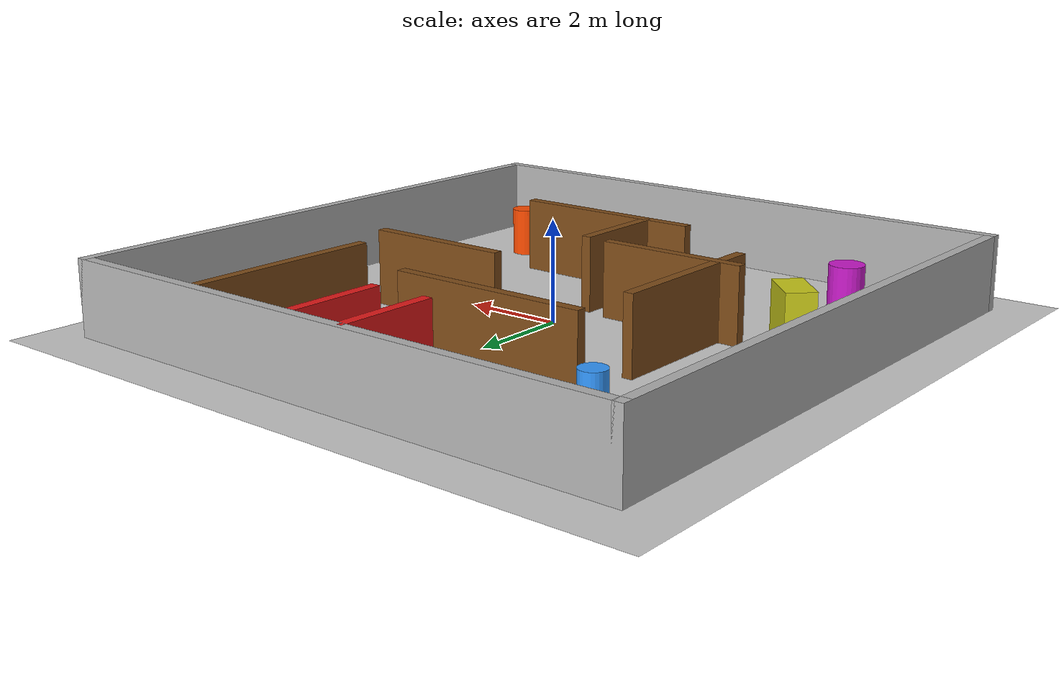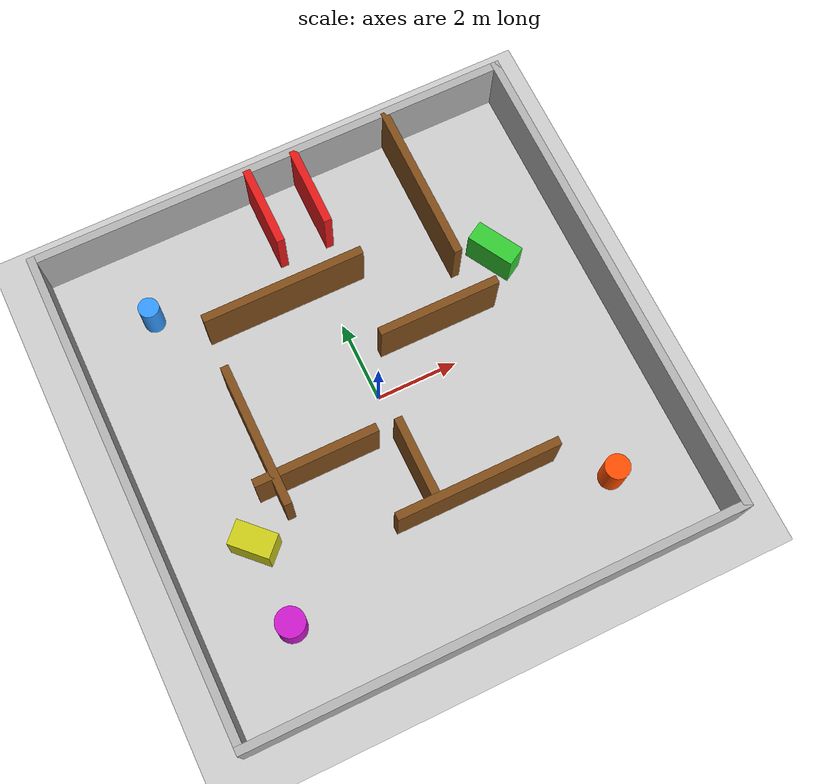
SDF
<?xml version="1.0"?>
<sdf version="1.6">
  <world name="maze_world">

    <include><uri>model://ground_plane</uri></include>
    <include><uri>model://sun</uri></include>

    <!-- Ambient light -->
    <light name="ambient_light" type="directional">
      <cast_shadows>false</cast_shadows>
      <diffuse>0.6 0.6 0.6 1</diffuse>
      <specular>0.1 0.1 0.1 1</specular>
      <direction>-0.5 0.5 -1</direction>
    </light>

    <!-- ═══════════════════════════════════════════════
         OUTER BOUNDARY  (12 x 12 arena)
    ═══════════════════════════════════════════════ -->
    <model name="wall_N"><static>true</static><pose>0 6 0.75 0 0 0</pose>
      <link name="l"><collision name="c"><geometry><box><size>12.2 0.2 1.5</size></box></geometry></collision>
      <visual name="v"><geometry><box><size>12.2 0.2 1.5</size></box></geometry>
        <material><ambient>0.7 0.7 0.7 1</ambient></material></visual></link></model>

    <model name="wall_S"><static>true</static><pose>0 -6 0.75 0 0 0</pose>
      <link name="l"><collision name="c"><geometry><box><size>12.2 0.2 1.5</size></box></geometry></collision>
      <visual name="v"><geometry><box><size>12.2 0.2 1.5</size></box></geometry>
        <material><ambient>0.7 0.7 0.7 1</ambient></material></visual></link></model>

    <model name="wall_E"><static>true</static><pose>6 0 0.75 0 0 1.5708</pose>
      <link name="l"><collision name="c"><geometry><box><size>12.2 0.2 1.5</size></box></geometry></collision>
      <visual name="v"><geometry><box><size>12.2 0.2 1.5</size></box></geometry>
        <material><ambient>0.7 0.7 0.7 1</ambient></material></visual></link></model>

    <model name="wall_W"><static>true</static><pose>-6 0 0.75 0 0 1.5708</pose>
      <link name="l"><collision name="c"><geometry><box><size>12.2 0.2 1.5</size></box></geometry></collision>
      <visual name="v"><geometry><box><size>12.2 0.2 1.5</size></box></geometry>
        <material><ambient>0.7 0.7 0.7 1</ambient></material></visual></link></model>

    <!-- ═══════════════════════════════════════════════
         INNER MAZE WALLS
    ═══════════════════════════════════════════════ -->
    <!-- Horizontal segments -->
    <model name="mwall_h1"><static>true</static><pose>-1 3 0.75 0 0 0</pose>
      <link name="l"><collision name="c"><geometry><box><size>4 0.2 1.5</size></box></geometry></collision>
      <visual name="v"><geometry><box><size>4 0.2 1.5</size></box></geometry>
        <material><ambient>0.5 0.3 0.1 1</ambient></material></visual></link></model>

    <model name="mwall_h2"><static>true</static><pose>2 1 0.75 0 0 0</pose>
      <link name="l"><collision name="c"><geometry><box><size>3 0.2 1.5</size></box></geometry></collision>
      <visual name="v"><geometry><box><size>3 0.2 1.5</size></box></geometry>
        <material><ambient>0.5 0.3 0.1 1</ambient></material></visual></link></model>

    <model name="mwall_h3"><static>true</static><pose>-2 -1 0.75 0 0 0</pose>
      <link name="l"><collision name="c"><geometry><box><size>3 0.2 1.5</size></box></geometry></collision>
      <visual name="v"><geometry><box><size>3 0.2 1.5</size></box></geometry>
        <material><ambient>0.5 0.3 0.1 1</ambient></material></visual></link></model>

    <model name="mwall_h4"><static>true</static><pose>1 -3 0.75 0 0 0</pose>
      <link name="l"><collision name="c"><geometry><box><size>4 0.2 1.5</size></box></geometry></collision>
      <visual name="v"><geometry><box><size>4 0.2 1.5</size></box></geometry>
        <material><ambient>0.5 0.3 0.1 1</ambient></material></visual></link></model>

    <!-- Vertical segments -->
    <model name="mwall_v1"><static>true</static><pose>3 4 0.75 0 0 1.5708</pose>
      <link name="l"><collision name="c"><geometry><box><size>4 0.2 1.5</size></box></geometry></collision>
      <visual name="v"><geometry><box><size>4 0.2 1.5</size></box></geometry>
        <material><ambient>0.5 0.3 0.1 1</ambient></material></visual></link></model>

    <model name="mwall_v2"><static>true</static><pose>-3 0 0.75 0 0 1.5708</pose>
      <link name="l"><collision name="c"><geometry><box><size>3.5 0.2 1.5</size></box></geometry></collision>
      <visual name="v"><geometry><box><size>3.5 0.2 1.5</size></box></geometry>
        <material><ambient>0.5 0.3 0.1 1</ambient></material></visual></link></model>

    <model name="mwall_v3"><static>true</static><pose>0 -2 0.75 0 0 1.5708</pose>
      <link name="l"><collision name="c"><geometry><box><size>2 0.2 1.5</size></box></geometry></collision>
      <visual name="v"><geometry><box><size>2 0.2 1.5</size></box></geometry>
        <material><ambient>0.5 0.3 0.1 1</ambient></material></visual></link></model>

    <!-- ═══════════════════════════════════════════════
         SCATTERED OBSTACLES
    ═══════════════════════════════════════════════ -->
    <!-- Cylinders -->
    <model name="cyl1"><static>true</static><pose>4 -4 0.5 0 0 0</pose>
      <link name="l"><collision name="c"><geometry><cylinder><radius>0.3</radius><length>1.0</length></cylinder></geometry></collision>
      <visual name="v"><geometry><cylinder><radius>0.3</radius><length>1.0</length></cylinder></geometry>
        <material><ambient>1 0.3 0 1</ambient></material></visual></link></model>

    <model name="cyl2"><static>true</static><pose>-4 4 0.5 0 0 0</pose>
      <link name="l"><collision name="c"><geometry><cylinder><radius>0.25</radius><length>1.0</length></cylinder></geometry></collision>
      <visual name="v"><geometry><cylinder><radius>0.25</radius><length>1.0</length></cylinder></geometry>
        <material><ambient>0.2 0.6 1 1</ambient></material></visual></link></model>

    <model name="cyl3"><static>true</static><pose>-4 -4 0.5 0 0 0</pose>
      <link name="l"><collision name="c"><geometry><cylinder><radius>0.35</radius><length>1.0</length></cylinder></geometry></collision>
      <visual name="v"><geometry><cylinder><radius>0.35</radius><length>1.0</length></cylinder></geometry>
        <material><ambient>0.8 0.1 0.8 1</ambient></material></visual></link></model>

    <!-- Boxes at angles -->
    <model name="diag_box1"><static>true</static><pose>4 2 0.5 0 0 0.523</pose>
      <link name="l"><collision name="c"><geometry><box><size>0.5 1.2 1</size></box></geometry></collision>
      <visual name="v"><geometry><box><size>0.5 1.2 1</size></box></geometry>
        <material><ambient>0.2 0.8 0.2 1</ambient></material></visual></link></model>

    <model name="diag_box2"><static>true</static><pose>-4 -2 0.5 0 0 0.785</pose>
      <link name="l"><collision name="c"><geometry><box><size>0.6 1.0 1</size></box></geometry></collision>
      <visual name="v"><geometry><box><size>0.6 1.0 1</size></box></geometry>
        <material><ambient>0.8 0.8 0.1 1</ambient></material></visual></link></model>

    <!-- Narrow corridor blocker (forces robot to navigate precisely) -->
    <model name="narrow_a"><static>true</static><pose>0.6 5 0.75 0 0 0</pose>
      <link name="l"><collision name="c"><geometry><box><size>0.2 2 1.5</size></box></geometry></collision>
      <visual name="v"><geometry><box><size>0.2 2 1.5</size></box></geometry>
        <material><ambient>0.9 0.1 0.1 1</ambient></material></visual></link></model>

    <model name="narrow_b"><static>true</static><pose>-0.6 5 0.75 0 0 0</pose>
      <link name="l"><collision name="c"><geometry><box><size>0.2 2 1.5</size></box></geometry></collision>
      <visual name="v"><geometry><box><size>0.2 2 1.5</size></box></geometry>
        <material><ambient>0.9 0.1 0.1 1</ambient></material></visual></link></model>

  </world>
</sdf>
